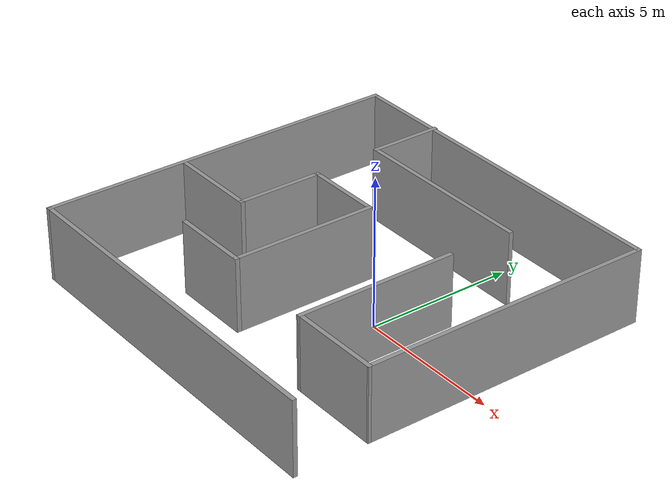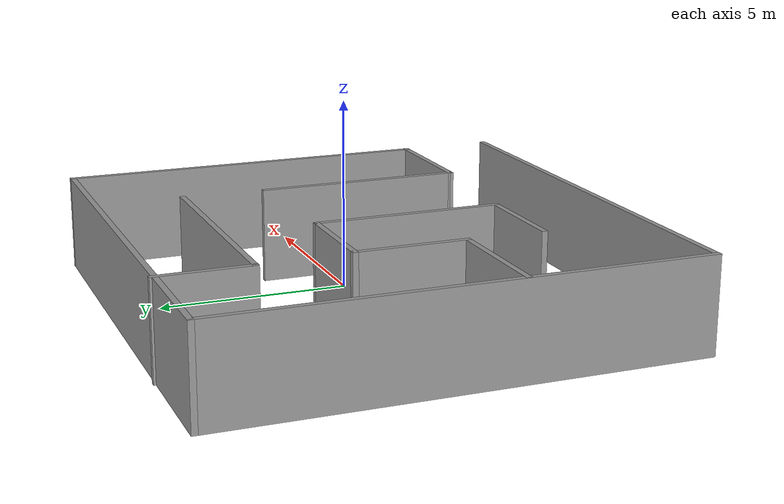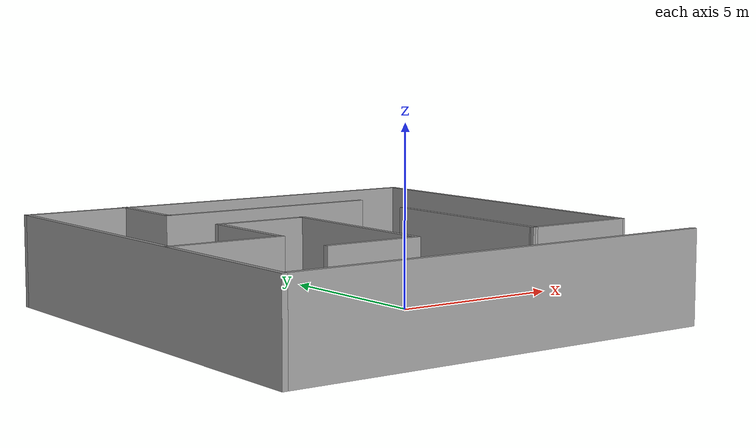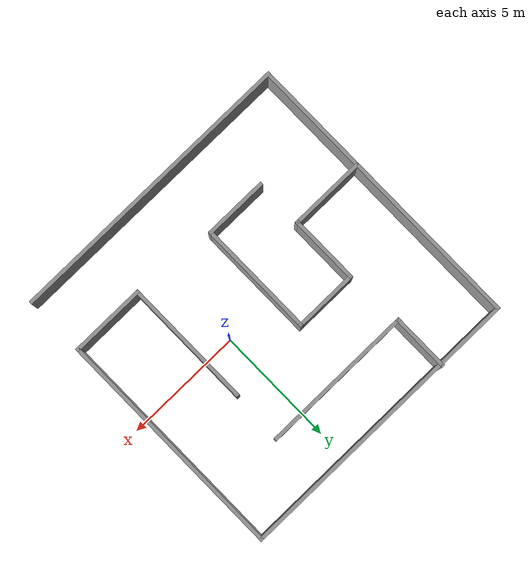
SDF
<?xml version='1.0'?>
<sdf version='1.7'>
  <model name='maze3'>
    <pose>-1.78332 0.094821 0 0 -0 0</pose>
    <link name='Wall_1'>
      <collision name='Wall_1_Collision'>
        <geometry>
          <box>
            <size>10 0.15 2.5</size>
          </box>
        </geometry>
        <pose>0 0 1.25 0 -0 0</pose>
      </collision>
      <visual name='Wall_1_Visual'>
        <pose>0 0 1.25 0 -0 0</pose>
        <geometry>
          <box>
            <size>10 0.15 2.5</size>
          </box>
        </geometry>
        <material>
          <script>
            <uri>file://media/materials/scripts/gazebo.material</uri>
            <name>Gazebo/Grey</name>
          </script>
          <ambient>1 1 1 1</ambient>
        </material>
        <meta>
          <layer>0</layer>
        </meta>
      </visual>
      <pose>6.17498 1.22083 0 0 -0 -1.5708</pose>
    </link>
    <link name='Wall_11'>
      <collision name='Wall_11_Collision'>
        <geometry>
          <box>
            <size>3 0.15 2.5</size>
          </box>
        </geometry>
        <pose>0 0 1.25 0 -0 0</pose>
      </collision>
      <visual name='Wall_11_Visual'>
        <pose>0 0 1.25 0 -0 0</pose>
        <geometry>
          <box>
            <size>3 0.15 2.5</size>
          </box>
        </geometry>
        <material>
          <script>
            <uri>file://media/materials/scripts/gazebo.material</uri>
            <name>Gazebo/Grey</name>
          </script>
          <ambient>1 1 1 1</ambient>
        </material>
        <meta>
          <layer>0</layer>
        </meta>
      </visual>
      <pose>-3.04781 0.021054 0 0 -0 -1.5708</pose>
    </link>
    <link name='Wall_12'>
      <collision name='Wall_12_Collision'>
        <geometry>
          <box>
            <size>3.25 0.15 2.5</size>
          </box>
        </geometry>
        <pose>0 0 1.25 0 -0 0</pose>
      </collision>
      <visual name='Wall_12_Visual'>
        <pose>0 0 1.25 0 -0 0</pose>
        <geometry>
          <box>
            <size>3.25 0.15 2.5</size>
          </box>
        </geometry>
        <material>
          <script>
            <uri>file://media/materials/scripts/gazebo.material</uri>
            <name>Gazebo/Grey</name>
          </script>
          <ambient>1 1 1 1</ambient>
        </material>
        <meta>
          <layer>0</layer>
        </meta>
      </visual>
      <pose>-4.59781 -1.40395 0 0 -0 3.14159</pose>
    </link>
    <link name='Wall_14'>
      <collision name='Wall_14_Collision'>
        <geometry>
          <box>
            <size>2.75 0.15 2.5</size>
          </box>
        </geometry>
        <pose>0 0 1.25 0 -0 0</pose>
      </collision>
      <visual name='Wall_14_Visual'>
        <pose>0 0 1.25 0 -0 0</pose>
        <geometry>
          <box>
            <size>2.75 0.15 2.5</size>
          </box>
        </geometry>
        <material>
          <script>
            <uri>file://media/materials/scripts/gazebo.material</uri>
            <name>Gazebo/Grey</name>
          </script>
          <ambient>1 1 1 1</ambient>
        </material>
        <meta>
          <layer>0</layer>
        </meta>
      </visual>
      <pose>-1.74781 1.44605 0 0 -0 0</pose>
    </link>
    <link name='Wall_15'>
      <collision name='Wall_15_Collision'>
        <geometry>
          <box>
            <size>5 0.15 2.5</size>
          </box>
        </geometry>
        <pose>0 0 1.25 0 -0 0</pose>
      </collision>
      <visual name='Wall_15_Visual'>
        <pose>0 0 1.25 0 -0 0</pose>
        <geometry>
          <box>
            <size>5 0.15 2.5</size>
          </box>
        </geometry>
        <material>
          <script>
            <uri>file://media/materials/scripts/gazebo.material</uri>
            <name>Gazebo/Grey</name>
          </script>
          <ambient>1 1 1 1</ambient>
        </material>
        <meta>
          <layer>0</layer>
        </meta>
      </visual>
      <pose>-0.447813 -0.978946 0 0 -0 -1.5708</pose>
    </link>
    <link name='Wall_16'>
      <collision name='Wall_16_Collision'>
        <geometry>
          <box>
            <size>2.75 0.15 2.5</size>
          </box>
        </geometry>
        <pose>0 0 1.25 0 -0 0</pose>
      </collision>
      <visual name='Wall_16_Visual'>
        <pose>0 0 1.25 0 -0 0</pose>
        <geometry>
          <box>
            <size>2.75 0.15 2.5</size>
          </box>
        </geometry>
        <material>
          <script>
            <uri>file://media/materials/scripts/gazebo.material</uri>
            <name>Gazebo/Grey</name>
          </script>
          <ambient>1 1 1 1</ambient>
        </material>
        <meta>
          <layer>0</layer>
        </meta>
      </visual>
      <pose>-1.74781 -3.40395 0 0 -0 3.14159</pose>
    </link>
    <link name='Wall_18'>
      <collision name='Wall_18_Collision'>
        <geometry>
          <box>
            <size>5.5 0.15 2.5</size>
          </box>
        </geometry>
        <pose>0 0 1.25 0 -0 0</pose>
      </collision>
      <visual name='Wall_18_Visual'>
        <pose>0 0 1.25 0 -0 0</pose>
        <geometry>
          <box>
            <size>5.5 0.15 2.5</size>
          </box>
        </geometry>
        <material>
          <script>
            <uri>file://media/materials/scripts/gazebo.material</uri>
            <name>Gazebo/Grey</name>
          </script>
          <ambient>1 1 1 1</ambient>
        </material>
        <meta>
          <layer>0</layer>
        </meta>
      </visual>
      <pose>3.08648 -1.03107 0 0 -0 -1.5708</pose>
    </link>
    <link name='Wall_19'>
      <collision name='Wall_19_Collision'>
        <geometry>
          <box>
            <size>3.23849 0.15 2.5</size>
          </box>
        </geometry>
        <pose>0 0 1.25 0 -0 0</pose>
      </collision>
      <visual name='Wall_19_Visual'>
        <pose>0 0 1.25 0 -0 0</pose>
        <geometry>
          <box>
            <size>3.23849 0.15 2.5</size>
          </box>
        </geometry>
        <material>
          <script>
            <uri>file://media/materials/scripts/gazebo.material</uri>
            <name>Gazebo/Grey</name>
          </script>
          <ambient>1 1 1 1</ambient>
        </material>
        <meta>
          <layer>0</layer>
        </meta>
      </visual>
      <pose>4.63073 -3.70512 0 0 -0 0.000612</pose>
    </link>
    <link name='Wall_4'>
      <collision name='Wall_4_Collision'>
        <geometry>
          <box>
            <size>12.5 0.15 2.5</size>
          </box>
        </geometry>
        <pose>0 0 1.25 0 -0 0</pose>
      </collision>
      <visual name='Wall_4_Visual'>
        <pose>0 0 1.25 0 -0 0</pose>
        <geometry>
          <box>
            <size>12.5 0.15 2.5</size>
          </box>
        </geometry>
        <material>
          <script>
            <uri>file://media/materials/scripts/gazebo.material</uri>
            <name>Gazebo/Grey</name>
          </script>
          <ambient>1 1 1 1</ambient>
        </material>
        <meta>
          <layer>0</layer>
        </meta>
      </visual>
      <pose>-2.3e-05 6.14583 0 0 -0 3.14159</pose>
    </link>
    <link name='Wall_5'>
      <collision name='Wall_5_Collision'>
        <geometry>
          <box>
            <size>12.5 0.15 2.5</size>
          </box>
        </geometry>
        <pose>0 0 1.25 0 -0 0</pose>
      </collision>
      <visual name='Wall_5_Visual'>
        <pose>0 0 1.25 0 -0 0</pose>
        <geometry>
          <box>
            <size>12.5 0.15 2.5</size>
          </box>
        </geometry>
        <material>
          <script>
            <uri>file://media/materials/scripts/gazebo.material</uri>
            <name>Gazebo/Grey</name>
          </script>
          <ambient>1 1 1 1</ambient>
        </material>
        <meta>
          <layer>0</layer>
        </meta>
      </visual>
      <pose>-6.17502 -0.029174 0 0 -0 -1.5708</pose>
    </link>
    <link name='Wall_6'>
      <collision name='Wall_6_Collision'>
        <geometry>
          <box>
            <size>12.5 0.15 2.5</size>
          </box>
        </geometry>
        <pose>0 0 1.25 0 -0 0</pose>
      </collision>
      <visual name='Wall_6_Visual'>
        <pose>0 0 1.25 0 -0 0</pose>
        <geometry>
          <box>
            <size>12.5 0.15 2.5</size>
          </box>
        </geometry>
        <material>
          <script>
            <uri>file://media/materials/scripts/gazebo.material</uri>
            <name>Gazebo/Grey</name>
          </script>
          <ambient>1 1 1 1</ambient>
        </material>
        <meta>
          <layer>0</layer>
        </meta>
      </visual>
      <pose>-2.3e-05 -6.20417 0 0 -0 0</pose>
    </link>
    <link name='Wall_8'>
      <collision name='Wall_8_Collision'>
        <geometry>
          <box>
            <size>2.5 0.15 2.5</size>
          </box>
        </geometry>
        <pose>0 0 1.25 0 -0 0</pose>
      </collision>
      <visual name='Wall_8_Visual'>
        <pose>0 0 1.25 0 -0 0</pose>
        <geometry>
          <box>
            <size>2.5 0.15 2.5</size>
          </box>
        </geometry>
        <material>
          <script>
            <uri>file://media/materials/scripts/gazebo.material</uri>
            <name>Gazebo/Grey</name>
          </script>
          <ambient>1 1 1 1</ambient>
        </material>
        <meta>
          <layer>0</layer>
        </meta>
      </visual>
      <pose>-3.1885 5.02918 0 0 -0 -1.5708</pose>
    </link>
    <link name='Wall_9'>
      <collision name='Wall_9_Collision'>
        <geometry>
          <box>
            <size>6.5 0.15 2.5</size>
          </box>
        </geometry>
        <pose>0 0 1.25 0 -0 0</pose>
      </collision>
      <visual name='Wall_9_Visual'>
        <pose>0 0 1.25 0 -0 0</pose>
        <geometry>
          <box>
            <size>6.5 0.15 2.5</size>
          </box>
        </geometry>
        <material>
          <script>
            <uri>file://media/materials/scripts/gazebo.material</uri>
            <name>Gazebo/Grey</name>
          </script>
          <ambient>1 1 1 1</ambient>
        </material>
        <meta>
          <layer>0</layer>
        </meta>
      </visual>
      <pose>-0.013495 3.85417 0 0 -0 0</pose>
    </link>
    <static>1</static>
  </model>
</sdf>
